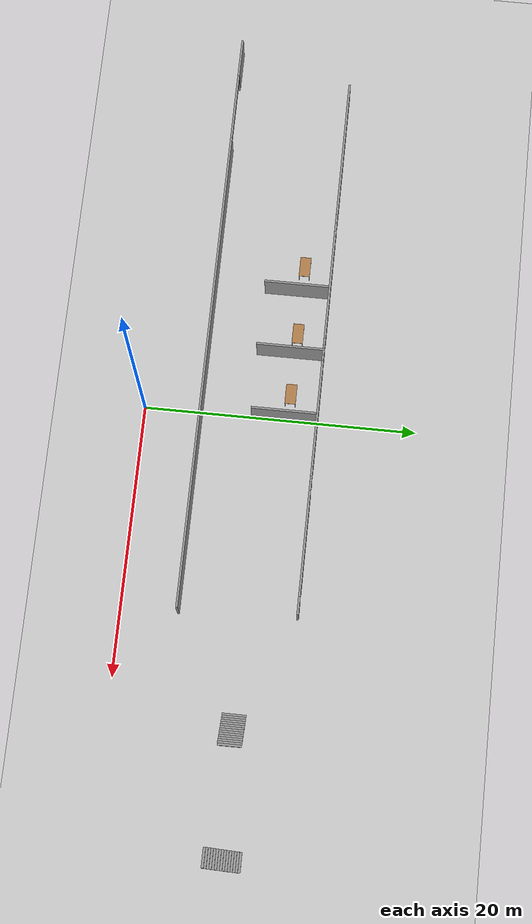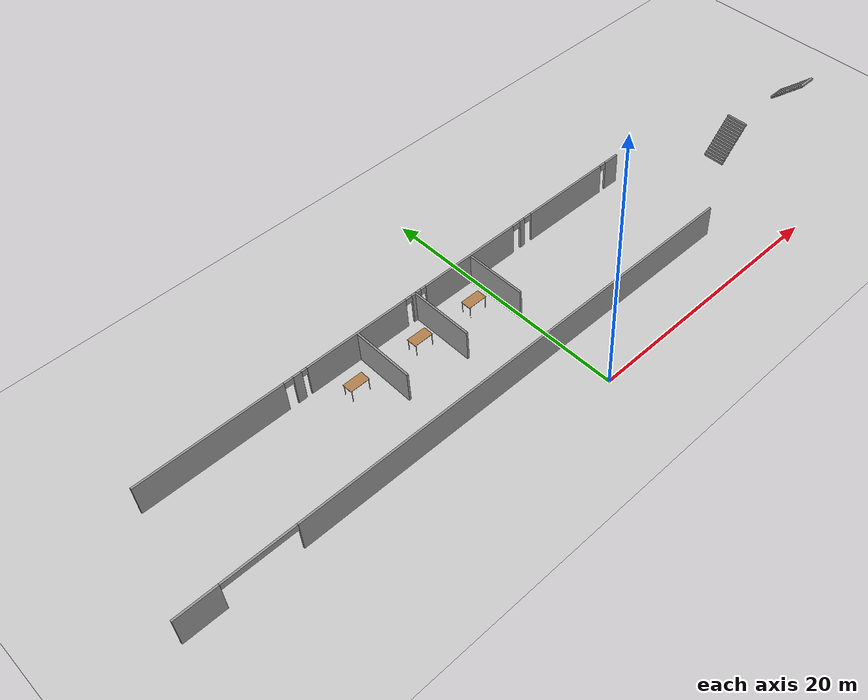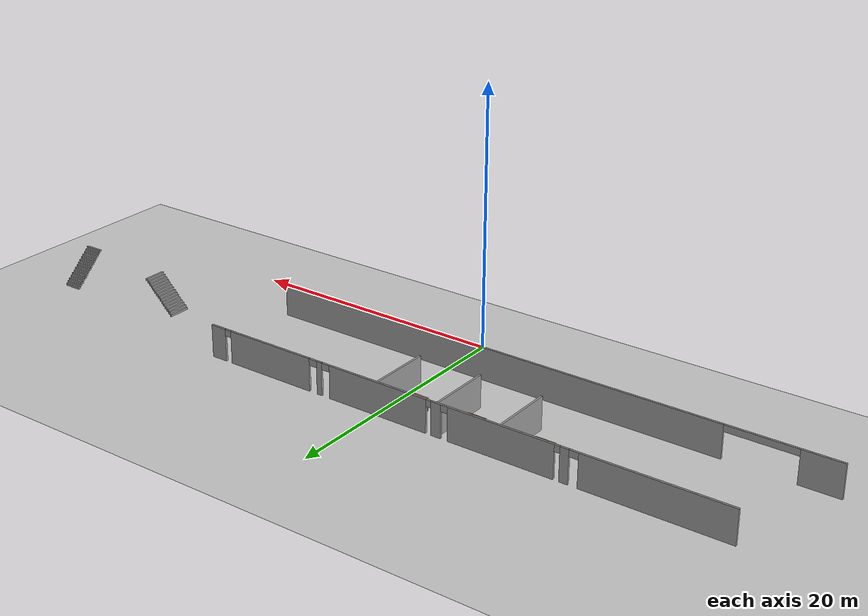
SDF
<sdf version="1.6">
 <world name="default">
  <model name="ground_plane">
   <static>1</static>
   <link name="link">
    <collision name="collision">
     <geometry><plane><normal>0 0 1</normal><size>100 100</size></plane></geometry>
     <surface><friction><ode><mu>100</mu><mu2>50</mu2></ode></friction></surface>
    </collision>
    <visual name="visual">
     <cast_shadows>0</cast_shadows>
     <geometry><plane><normal>0 0 1</normal><size>100 100</size></plane></geometry>
     <material>
      <script><uri>file://media/materials/scripts/gazebo.material</uri><name>Gazebo/Grey</name></script>
     </material>
    </visual>
   </link>
  </model>
  <model name="se1f1_fin.sdf">
   <pose>1.7543 -3.15003 0 0 -0 0</pose>
   <link name="Stairs_0">
    <visual name="Stairs_0_Visual_0">
     <pose>20.0688 12.0461 0.083333 0 -0 1.5708</pose>
     <geometry><box><size>1.71709 0.168037 0.166667</size></box></geometry>
     <material>
      <script><uri>file://media/materials/scripts/gazebo.material</uri><name>Gazebo/Grey</name></script>
      <ambient>1 1 1 1</ambient>
     </material>
     <meta><layer>0</layer></meta>
    </visual>
    <collision name="Stairs_0_Collision_0">
     <geometry><box><size>1.71709 0.168037 0.166667</size></box></geometry>
     <pose>20.0688 12.0461 0.083333 0 -0 1.5708</pose>
    </collision>
    <visual name="Stairs_0_Visual_1">
     <pose>20.2369 12.0461 0.25 0 -0 1.5708</pose>
     <geometry><box><size>1.71709 0.168037 0.166667</size></box></geometry>
     <material>
      <script><uri>file://media/materials/scripts/gazebo.material</uri><name>Gazebo/Grey</name></script>
      <ambient>1 1 1 1</ambient>
     </material>
     <meta><layer>0</layer></meta>
    </visual>
    <collision name="Stairs_0_Collision_1">
     <geometry><box><size>1.71709 0.168037 0.166667</size></box></geometry>
     <pose>20.2369 12.0461 0.25 0 -0 1.5708</pose>
    </collision>
    <visual name="Stairs_0_Visual_2">
     <pose>20.4049 12.0461 0.416667 0 -0 1.5708</pose>
     <geometry><box><size>1.71709 0.168037 0.166667</size></box></geometry>
     <material>
      <script><uri>file://media/materials/scripts/gazebo.material</uri><name>Gazebo/Grey</name></script>
      <ambient>1 1 1 1</ambient>
     </material>
     <meta><layer>0</layer></meta>
    </visual>
    <collision name="Stairs_0_Collision_2">
     <geometry><box><size>1.71709 0.168037 0.166667</size></box></geometry>
     <pose>20.4049 12.0461 0.416667 0 -0 1.5708</pose>
    </collision>
    <visual name="Stairs_0_Visual_3">
     <pose>20.5729 12.0461 0.583333 0 -0 1.5708</pose>
     <geometry><box><size>1.71709 0.168037 0.166667</size></box></geometry>
     <material>
      <script><uri>file://media/materials/scripts/gazebo.material</uri><name>Gazebo/Grey</name></script>
      <ambient>1 1 1 1</ambient>
     </material>
     <meta><layer>0</layer></meta>
    </visual>
    <collision name="Stairs_0_Collision_3">
     <geometry><box><size>1.71709 0.168037 0.166667</size></box></geometry>
     <pose>20.5729 12.0461 0.583333 0 -0 1.5708</pose>
    </collision>
    <visual name="Stairs_0_Visual_4">
     <pose>20.741 12.0461 0.75 0 -0 1.5708</pose>
     <geometry><box><size>1.71709 0.168037 0.166667</size></box></geometry>
     <material>
      <script><uri>file://media/materials/scripts/gazebo.material</uri><name>Gazebo/Grey</name></script>
      <ambient>1 1 1 1</ambient>
     </material>
     <meta><layer>0</layer></meta>
    </visual>
    <collision name="Stairs_0_Collision_4">
     <geometry><box><size>1.71709 0.168037 0.166667</size></box></geometry>
     <pose>20.741 12.0461 0.75 0 -0 1.5708</pose>
    </collision>
    <visual name="Stairs_0_Visual_5">
     <pose>20.909 12.0461 0.916667 0 -0 1.5708</pose>
     <geometry><box><size>1.71709 0.168037 0.166667</size></box></geometry>
     <material>
      <script><uri>file://media/materials/scripts/gazebo.material</uri><name>Gazebo/Grey</name></script>
      <ambient>1 1 1 1</ambient>
     </material>
     <meta><layer>0</layer></meta>
    </visual>
    <collision name="Stairs_0_Collision_5">
     <geometry><box><size>1.71709 0.168037 0.166667</size></box></geometry>
     <pose>20.909 12.0461 0.916667 0 -0 1.5708</pose>
    </collision>
    <visual name="Stairs_0_Visual_6">
     <pose>21.077 12.0461 1.08333 0 -0 1.5708</pose>
     <geometry><box><size>1.71709 0.168037 0.166667</size></box></geometry>
     <material>
      <script><uri>file://media/materials/scripts/gazebo.material</uri><name>Gazebo/Grey</name></script>
      <ambient>1 1 1 1</ambient>
     </material>
     <meta><layer>0</layer></meta>
    </visual>
    <collision name="Stairs_0_Collision_6">
     <geometry><box><size>1.71709 0.168037 0.166667</size></box></geometry>
     <pose>21.077 12.0461 1.08333 0 -0 1.5708</pose>
    </collision>
    <visual name="Stairs_0_Visual_7">
     <pose>21.2451 12.0461 1.25 0 -0 1.5708</pose>
     <geometry><box><size>1.71709 0.168037 0.166667</size></box></geometry>
     <material>
      <script><uri>file://media/materials/scripts/gazebo.material</uri><name>Gazebo/Grey</name></script>
      <ambient>1 1 1 1</ambient>
     </material>
     <meta><layer>0</layer></meta>
    </visual>
    <collision name="Stairs_0_Collision_7">
     <geometry><box><size>1.71709 0.168037 0.166667</size></box></geometry>
     <pose>21.2451 12.0461 1.25 0 -0 1.5708</pose>
    </collision>
    <visual name="Stairs_0_Visual_8">
     <pose>21.4131 12.0461 1.41667 0 -0 1.5708</pose>
     <geometry><box><size>1.71709 0.168037 0.166667</size></box></geometry>
     <material>
      <script><uri>file://media/materials/scripts/gazebo.material</uri><name>Gazebo/Grey</name></script>
      <ambient>1 1 1 1</ambient>
     </material>
     <meta><layer>0</layer></meta>
    </visual>
    <collision name="Stairs_0_Collision_8">
     <geometry><box><size>1.71709 0.168037 0.166667</size></box></geometry>
     <pose>21.4131 12.0461 1.41667 0 -0 1.5708</pose>
    </collision>
    <visual name="Stairs_0_Visual_9">
     <pose>21.5812 12.0461 1.58333 0 -0 1.5708</pose>
     <geometry><box><size>1.71709 0.168037 0.166667</size></box></geometry>
     <material>
      <script><uri>file://media/materials/scripts/gazebo.material</uri><name>Gazebo/Grey</name></script>
      <ambient>1 1 1 1</ambient>
     </material>
     <meta><layer>0</layer></meta>
    </visual>
    <collision name="Stairs_0_Collision_9">
     <geometry><box><size>1.71709 0.168037 0.166667</size></box></geometry>
     <pose>21.5812 12.0461 1.58333 0 -0 1.5708</pose>
    </collision>
    <visual name="Stairs_0_Visual_10">
     <pose>21.7492 12.0461 1.75 0 -0 1.5708</pose>
     <geometry><box><size>1.71709 0.168037 0.166667</size></box></geometry>
     <material>
      <script><uri>file://media/materials/scripts/gazebo.material</uri><name>Gazebo/Grey</name></script>
      <ambient>1 1 1 1</ambient>
     </material>
     <meta><layer>0</layer></meta>
    </visual>
    <collision name="Stairs_0_Collision_10">
     <geometry><box><size>1.71709 0.168037 0.166667</size></box></geometry>
     <pose>21.7492 12.0461 1.75 0 -0 1.5708</pose>
    </collision>
    <visual name="Stairs_0_Visual_11">
     <pose>21.9172 12.0461 1.91667 0 -0 1.5708</pose>
     <geometry><box><size>1.71709 0.168037 0.166667</size></box></geometry>
     <material>
      <script><uri>file://media/materials/scripts/gazebo.material</uri><name>Gazebo/Grey</name></script>
      <ambient>1 1 1 1</ambient>
     </material>
     <meta><layer>0</layer></meta>
    </visual>
    <collision name="Stairs_0_Collision_11">
     <geometry><box><size>1.71709 0.168037 0.166667</size></box></geometry>
     <pose>21.9172 12.0461 1.91667 0 -0 1.5708</pose>
    </collision>
    <visual name="Stairs_0_Visual_12">
     <pose>22.0853 12.0461 2.08333 0 -0 1.5708</pose>
     <geometry><box><size>1.71709 0.168037 0.166667</size></box></geometry>
     <material>
      <script><uri>file://media/materials/scripts/gazebo.material</uri><name>Gazebo/Grey</name></script>
      <ambient>1 1 1 1</ambient>
     </material>
     <meta><layer>0</layer></meta>
    </visual>
    <collision name="Stairs_0_Collision_12">
     <geometry><box><size>1.71709 0.168037 0.166667</size></box></geometry>
     <pose>22.0853 12.0461 2.08333 0 -0 1.5708</pose>
    </collision>
    <visual name="Stairs_0_Visual_13">
     <pose>22.2533 12.0461 2.25 0 -0 1.5708</pose>
     <geometry><box><size>1.71709 0.168037 0.166667</size></box></geometry>
     <material>
      <script><uri>file://media/materials/scripts/gazebo.material</uri><name>Gazebo/Grey</name></script>
      <ambient>1 1 1 1</ambient>
     </material>
     <meta><layer>0</layer></meta>
    </visual>
    <collision name="Stairs_0_Collision_13">
     <geometry><box><size>1.71709 0.168037 0.166667</size></box></geometry>
     <pose>22.2533 12.0461 2.25 0 -0 1.5708</pose>
    </collision>
    <visual name="Stairs_0_Visual_14">
     <pose>22.4213 12.0461 2.41667 0 -0 1.5708</pose>
     <geometry><box><size>1.71709 0.168037 0.166667</size></box></geometry>
     <material>
      <script><uri>file://media/materials/scripts/gazebo.material</uri><name>Gazebo/Grey</name></script>
      <ambient>1 1 1 1</ambient>
     </material>
     <meta><layer>0</layer></meta>
    </visual>
    <collision name="Stairs_0_Collision_14">
     <geometry><box><size>1.71709 0.168037 0.166667</size></box></geometry>
     <pose>22.4213 12.0461 2.41667 0 -0 1.5708</pose>
    </collision>
   </link>
   <link name="Stairs_1">
    <visual name="Stairs_1_Visual_0">
     <pose>30.095 13.5256 0.083333 0 -0 0</pose>
     <geometry><box><size>1.41976 0.173867 0.166667</size></box></geometry>
     <material>
      <script><uri>file://media/materials/scripts/gazebo.material</uri><name>Gazebo/Grey</name></script>
      <ambient>1 1 1 1</ambient>
     </material>
     <meta><layer>0</layer></meta>
    </visual>
    <collision name="Stairs_1_Collision_0">
     <geometry><box><size>1.41976 0.173867 0.166667</size></box></geometry>
     <pose>30.095 13.5256 0.083333 0 -0 0</pose>
    </collision>
    <visual name="Stairs_1_Visual_1">
     <pose>30.095 13.3517 0.25 0 -0 0</pose>
     <geometry><box><size>1.41976 0.173867 0.166667</size></box></geometry>
     <material>
      <script><uri>file://media/materials/scripts/gazebo.material</uri><name>Gazebo/Grey</name></script>
      <ambient>1 1 1 1</ambient>
     </material>
     <meta><layer>0</layer></meta>
    </visual>
    <collision name="Stairs_1_Collision_1">
     <geometry><box><size>1.41976 0.173867 0.166667</size></box></geometry>
     <pose>30.095 13.3517 0.25 0 -0 0</pose>
    </collision>
    <visual name="Stairs_1_Visual_2">
     <pose>30.095 13.1778 0.416667 0 -0 0</pose>
     <geometry><box><size>1.41976 0.173867 0.166667</size></box></geometry>
     <material>
      <script><uri>file://media/materials/scripts/gazebo.material</uri><name>Gazebo/Grey</name></script>
      <ambient>1 1 1 1</ambient>
     </material>
     <meta><layer>0</layer></meta>
    </visual>
    <collision name="Stairs_1_Collision_2">
     <geometry><box><size>1.41976 0.173867 0.166667</size></box></geometry>
     <pose>30.095 13.1778 0.416667 0 -0 0</pose>
    </collision>
    <visual name="Stairs_1_Visual_3">
     <pose>30.095 13.004 0.583333 0 -0 0</pose>
     <geometry><box><size>1.41976 0.173867 0.166667</size></box></geometry>
     <material>
      <script><uri>file://media/materials/scripts/gazebo.material</uri><name>Gazebo/Grey</name></script>
      <ambient>1 1 1 1</ambient>
     </material>
     <meta><layer>0</layer></meta>
    </visual>
    <collision name="Stairs_1_Collision_3">
     <geometry><box><size>1.41976 0.173867 0.166667</size></box></geometry>
     <pose>30.095 13.004 0.583333 0 -0 0</pose>
    </collision>
    <visual name="Stairs_1_Visual_4">
     <pose>30.095 12.8301 0.75 0 -0 0</pose>
     <geometry><box><size>1.41976 0.173867 0.166667</size></box></geometry>
     <material>
      <script><uri>file://media/materials/scripts/gazebo.material</uri><name>Gazebo/Grey</name></script>
      <ambient>1 1 1 1</ambient>
     </material>
     <meta><layer>0</layer></meta>
    </visual>
    <collision name="Stairs_1_Collision_4">
     <geometry><box><size>1.41976 0.173867 0.166667</size></box></geometry>
     <pose>30.095 12.8301 0.75 0 -0 0</pose>
    </collision>
    <visual name="Stairs_1_Visual_5">
     <pose>30.095 12.6562 0.916667 0 -0 0</pose>
     <geometry><box><size>1.41976 0.173867 0.166667</size></box></geometry>
     <material>
      <script><uri>file://media/materials/scripts/gazebo.material</uri><name>Gazebo/Grey</name></script>
      <ambient>1 1 1 1</ambient>
     </material>
     <meta><layer>0</layer></meta>
    </visual>
    <collision name="Stairs_1_Collision_5">
     <geometry><box><size>1.41976 0.173867 0.166667</size></box></geometry>
     <pose>30.095 12.6562 0.916667 0 -0 0</pose>
    </collision>
    <visual name="Stairs_1_Visual_6">
     <pose>30.095 12.4824 1.08333 0 -0 0</pose>
     <geometry><box><size>1.41976 0.173867 0.166667</size></box></geometry>
     <material>
      <script><uri>file://media/materials/scripts/gazebo.material</uri><name>Gazebo/Grey</name></script>
      <ambient>1 1 1 1</ambient>
     </material>
     <meta><layer>0</layer></meta>
    </visual>
    <collision name="Stairs_1_Collision_6">
     <geometry><box><size>1.41976 0.173867 0.166667</size></box></geometry>
     <pose>30.095 12.4824 1.08333 0 -0 0</pose>
    </collision>
    <visual name="Stairs_1_Visual_7">
     <pose>30.095 12.3085 1.25 0 -0 0</pose>
     <geometry><box><size>1.41976 0.173867 0.166667</size></box></geometry>
     <material>
      <script><uri>file://media/materials/scripts/gazebo.material</uri><name>Gazebo/Grey</name></script>
      <ambient>1 1 1 1</ambient>
     </material>
     <meta><layer>0</layer></meta>
    </visual>
    <collision name="Stairs_1_Collision_7">
     <geometry><box><size>1.41976 0.173867 0.166667</size></box></geometry>
     <pose>30.095 12.3085 1.25 0 -0 0</pose>
    </collision>
    <visual name="Stairs_1_Visual_8">
     <pose>30.095 12.1346 1.41667 0 -0 0</pose>
     <geometry><box><size>1.41976 0.173867 0.166667</size></box></geometry>
     <material>
      <script><uri>file://media/materials/scripts/gazebo.material</uri><name>Gazebo/Grey</name></script>
      <ambient>1 1 1 1</ambient>
     </material>
     <meta><layer>0</layer></meta>
    </visual>
    <collision name="Stairs_1_Collision_8">
     <geometry><box><size>1.41976 0.173867 0.166667</size></box></geometry>
     <pose>30.095 12.1346 1.41667 0 -0 0</pose>
    </collision>
    <visual name="Stairs_1_Visual_9">
     <pose>30.095 11.9608 1.58333 0 -0 0</pose>
     <geometry><box><size>1.41976 0.173867 0.166667</size></box></geometry>
     <material>
      <script><uri>file://media/materials/scripts/gazebo.material</uri><name>Gazebo/Grey</name></script>
      <ambient>1 1 1 1</ambient>
     </material>
     <meta><layer>0</layer></meta>
    </visual>
    <collision name="Stairs_1_Collision_9">
     <geometry><box><size>1.41976 0.173867 0.166667</size></box></geometry>
     <pose>30.095 11.9608 1.58333 0 -0 0</pose>
    </collision>
    <visual name="Stairs_1_Visual_10">
     <pose>30.095 11.7869 1.75 0 -0 0</pose>
     <geometry><box><size>1.41976 0.173867 0.166667</size></box></geometry>
     <material>
      <script><uri>file://media/materials/scripts/gazebo.material</uri><name>Gazebo/Grey</name></script>
      <ambient>1 1 1 1</ambient>
     </material>
     <meta><layer>0</layer></meta>
    </visual>
    <collision name="Stairs_1_Collision_10">
     <geometry><box><size>1.41976 0.173867 0.166667</size></box></geometry>
     <pose>30.095 11.7869 1.75 0 -0 0</pose>
    </collision>
    <visual name="Stairs_1_Visual_11">
     <pose>30.095 11.613 1.91667 0 -0 0</pose>
     <geometry><box><size>1.41976 0.173867 0.166667</size></box></geometry>
     <material>
      <script><uri>file://media/materials/scripts/gazebo.material</uri><name>Gazebo/Grey</name></script>
      <ambient>1 1 1 1</ambient>
     </material>
     <meta><layer>0</layer></meta>
    </visual>
    <collision name="Stairs_1_Collision_11">
     <geometry><box><size>1.41976 0.173867 0.166667</size></box></geometry>
     <pose>30.095 11.613 1.91667 0 -0 0</pose>
    </collision>
    <visual name="Stairs_1_Visual_12">
     <pose>30.095 11.4391 2.08333 0 -0 0</pose>
     <geometry><box><size>1.41976 0.173867 0.166667</size></box></geometry>
     <material>
      <script><uri>file://media/materials/scripts/gazebo.material</uri><name>Gazebo/Grey</name></script>
      <ambient>1 1 1 1</ambient>
     </material>
     <meta><layer>0</layer></meta>
    </visual>
    <collision name="Stairs_1_Collision_12">
     <geometry><box><size>1.41976 0.173867 0.166667</size></box></geometry>
     <pose>30.095 11.4391 2.08333 0 -0 0</pose>
    </collision>
    <visual name="Stairs_1_Visual_13">
     <pose>30.095 11.2653 2.25 0 -0 0</pose>
     <geometry><box><size>1.41976 0.173867 0.166667</size></box></geometry>
     <material>
      <script><uri>file://media/materials/scripts/gazebo.material</uri><name>Gazebo/Grey</name></script>
      <ambient>1 1 1 1</ambient>
     </material>
     <meta><layer>0</layer></meta>
    </visual>
    <collision name="Stairs_1_Collision_13">
     <geometry><box><size>1.41976 0.173867 0.166667</size></box></geometry>
     <pose>30.095 11.2653 2.25 0 -0 0</pose>
    </collision>
    <visual name="Stairs_1_Visual_14">
     <pose>30.095 11.0914 2.41667 0 -0 0</pose>
     <geometry><box><size>1.41976 0.173867 0.166667</size></box></geometry>
     <material>
      <script><uri>file://media/materials/scripts/gazebo.material</uri><name>Gazebo/Grey</name></script>
      <ambient>1 1 1 1</ambient>
     </material>
     <meta><layer>0</layer></meta>
    </visual>
    <collision name="Stairs_1_Collision_14">
     <geometry><box><size>1.41976 0.173867 0.166667</size></box></geometry>
     <pose>30.095 11.0914 2.41667 0 -0 0</pose>
    </collision>
   </link>
   <link name="Wall_101">
    <collision name="Wall_101_Collision">
     <geometry><box><size>4.75 0.15 2.5</size></box></geometry>
     <pose>0 0 1.25 0 -0 0</pose>
    </collision>
    <visual name="Wall_101_Visual">
     <pose>0 0 1.25 0 -0 0</pose>
     <geometry><box><size>4.75 0.15 2.5</size></box></geometry>
     <material>
      <script><uri>file://media/materials/scripts/gazebo.material</uri><name>Gazebo/Grey</name></script>
      <ambient>1 1 1 1</ambient>
     </material>
     <meta><layer>0</layer></meta>
    </visual>
    <pose>-11.6538 13.3735 0 0 -0 1.5708</pose>
   </link>
   <link name="Wall_103">
    <collision name="Wall_103_Collision">
     <geometry><box><size>5 0.15 2.5</size></box></geometry>
     <pose>0 0 1.25 0 -0 0</pose>
    </collision>
    <visual name="Wall_103_Visual">
     <pose>0 0 1.25 0 -0 0</pose>
     <geometry><box><size>5 0.15 2.5</size></box></geometry>
     <material>
      <script><uri>file://media/materials/scripts/gazebo.material</uri><name>Gazebo/Grey</name></script>
      <ambient>1 1 1 1</ambient>
     </material>
     <meta><layer>0</layer></meta>
    </visual>
    <pose>-6.75659 13.3935 0 0 -0 1.5708</pose>
   </link>
   <link name="Wall_106">
    <collision name="Wall_106_Collision">
     <geometry><box><size>4.75 0.15 2.5</size></box></geometry>
     <pose>0 0 1.25 0 -0 0</pose>
    </collision>
    <visual name="Wall_106_Visual">
     <pose>0 0 1.25 0 -0 0</pose>
     <geometry><box><size>4.75 0.15 2.5</size></box></geometry>
     <material>
      <script><uri>file://media/materials/scripts/gazebo.material</uri><name>Gazebo/Grey</name></script>
      <ambient>1 1 1 1</ambient>
     </material>
     <meta><layer>0</layer></meta>
    </visual>
    <pose>-1.85938 13.3735 0 0 -0 1.5708</pose>
   </link>
   <link name="Wall_21">
    <pose>-7.59191 15.8321 0 0 -0 0</pose>
    <visual name="Wall_21_Visual_0">
     <pose>-15.16 0 1.25 0 -0 0</pose>
     <geometry><box><size>10.68 0.15 2.5</size></box></geometry>
     <material>
      <script><uri>file://media/materials/scripts/gazebo.material</uri><name>Gazebo/Grey</name></script>
      <ambient>1 1 1 1</ambient>
     </material>
     <meta><layer>0</layer></meta>
    </visual>
    <collision name="Wall_21_Collision_0">
     <geometry><box><size>10.68 0.15 2.5</size></box></geometry>
     <pose>-15.16 0 1.25 0 -0 0</pose>
    </collision>
    <visual name="Wall_21_Visual_1">
     <pose>-8.81042 0 1.25 0 -0 0</pose>
     <geometry><box><size>0.642534 0.15 2.5</size></box></geometry>
     <material>
      <script><uri>file://media/materials/scripts/gazebo.material</uri><name>Gazebo/Grey</name></script>
      <ambient>1 1 1 1</ambient>
     </material>
     <meta><layer>0</layer></meta>
    </visual>
    <collision name="Wall_21_Collision_1">
     <geometry><box><size>0.642534 0.15 2.5</size></box></geometry>
     <pose>-8.81042 0 1.25 0 -0 0</pose>
    </collision>
    <visual name="Wall_21_Visual_2">
     <pose>-4.06184 0 1.25 0 -0 0</pose>
     <geometry><box><size>8.03762 0.15 2.5</size></box></geometry>
     <material>
      <script><uri>file://media/materials/scripts/gazebo.material</uri><name>Gazebo/Grey</name></script>
      <ambient>1 1 1 1</ambient>
     </material>
     <meta><layer>0</layer></meta>
    </visual>
    <collision name="Wall_21_Collision_2">
     <geometry><box><size>8.03762 0.15 2.5</size></box></geometry>
     <pose>-4.06184 0 1.25 0 -0 0</pose>
    </collision>
    <visual name="Wall_21_Visual_3">
     <pose>0.87956 0 1.25 0 -0 0</pose>
     <geometry><box><size>0.771078 0.15 2.5</size></box></geometry>
     <material>
      <script><uri>file://media/materials/scripts/gazebo.material</uri><name>Gazebo/Grey</name></script>
      <ambient>1 1 1 1</ambient>
     </material>
     <meta><layer>0</layer></meta>
    </visual>
    <collision name="Wall_21_Collision_3">
     <geometry><box><size>0.771078 0.15 2.5</size></box></geometry>
     <pose>0.87956 0 1.25 0 -0 0</pose>
    </collision>
    <visual name="Wall_21_Visual_4">
     <pose>5.71888 0 1.25 0 -0 0</pose>
     <geometry><box><size>8.0603 0.15 2.5</size></box></geometry>
     <material>
      <script><uri>file://media/materials/scripts/gazebo.material</uri><name>Gazebo/Grey</name></script>
      <ambient>1 1 1 1</ambient>
     </material>
     <meta><layer>0</layer></meta>
    </visual>
    <collision name="Wall_21_Collision_4">
     <geometry><box><size>8.0603 0.15 2.5</size></box></geometry>
     <pose>5.71888 0 1.25 0 -0 0</pose>
    </collision>
    <visual name="Wall_21_Visual_5">
     <pose>10.6433 0 1.25 0 -0 0</pose>
     <geometry><box><size>0.427032 0.15 2.5</size></box></geometry>
     <material>
      <script><uri>file://media/materials/scripts/gazebo.material</uri><name>Gazebo/Grey</name></script>
      <ambient>1 1 1 1</ambient>
     </material>
     <meta><layer>0</layer></meta>
    </visual>
    <collision name="Wall_21_Collision_5">
     <geometry><box><size>0.427032 0.15 2.5</size></box></geometry>
     <pose>10.6433 0 1.25 0 -0 0</pose>
    </collision>
    <visual name="Wall_21_Visual_6">
     <pose>15.1074 0 1.25 0 -0 0</pose>
     <geometry><box><size>7.18509 0.15 2.5</size></box></geometry>
     <material>
      <script><uri>file://media/materials/scripts/gazebo.material</uri><name>Gazebo/Grey</name></script>
      <ambient>1 1 1 1</ambient>
     </material>
     <meta><layer>0</layer></meta>
    </visual>
    <collision name="Wall_21_Collision_6">
     <geometry><box><size>7.18509 0.15 2.5</size></box></geometry>
     <pose>15.1074 0 1.25 0 -0 0</pose>
    </collision>
    <visual name="Wall_21_Visual_7">
     <pose>19.8602 0 1.25 0 -0 0</pose>
     <geometry><box><size>1.27959 0.15 2.5</size></box></geometry>
     <material>
      <script><uri>file://media/materials/scripts/gazebo.material</uri><name>Gazebo/Grey</name></script>
      <ambient>1 1 1 1</ambient>
     </material>
     <meta><layer>0</layer></meta>
    </visual>
    <collision name="Wall_21_Collision_7">
     <geometry><box><size>1.27959 0.15 2.5</size></box></geometry>
     <pose>19.8602 0 1.25 0 -0 0</pose>
    </collision>
    <visual name="Wall_21_Visual_8">
     <pose>-9.47583 0 2.25 0 -0 0</pose>
     <geometry><box><size>0.68828 0.15 0.5</size></box></geometry>
     <material>
      <script><uri>file://media/materials/scripts/gazebo.material</uri><name>Gazebo/Grey</name></script>
      <ambient>1 1 1 1</ambient>
     </material>
     <meta><layer>0</layer></meta>
    </visual>
    <collision name="Wall_21_Collision_8">
     <geometry><box><size>0.68828 0.15 0.5</size></box></geometry>
     <pose>-9.47583 0 2.25 0 -0 0</pose>
    </collision>
    <visual name="Wall_21_Visual_9">
     <pose>-8.2849 0 2.25 0 -0 0</pose>
     <geometry><box><size>0.408507 0.15 0.5</size></box></geometry>
     <material>
      <script><uri>file://media/materials/scripts/gazebo.material</uri><name>Gazebo/Grey</name></script>
      <ambient>1 1 1 1</ambient>
     </material>
     <meta><layer>0</layer></meta>
    </visual>
    <collision name="Wall_21_Collision_9">
     <geometry><box><size>0.408507 0.15 0.5</size></box></geometry>
     <pose>-8.2849 0 2.25 0 -0 0</pose>
    </collision>
    <visual name="Wall_21_Visual_10">
     <pose>0.225495 0 2.25 0 -0 0</pose>
     <geometry><box><size>0.537051 0.15 0.5</size></box></geometry>
     <material>
      <script><uri>file://media/materials/scripts/gazebo.material</uri><name>Gazebo/Grey</name></script>
      <ambient>1 1 1 1</ambient>
     </material>
     <meta><layer>0</layer></meta>
    </visual>
    <collision name="Wall_21_Collision_10">
     <geometry><box><size>0.537051 0.15 0.5</size></box></geometry>
     <pose>0.225495 0 2.25 0 -0 0</pose>
    </collision>
    <visual name="Wall_21_Visual_11">
     <pose>1.47691 0 2.25 0 -0 0</pose>
     <geometry><box><size>0.423629 0.15 0.5</size></box></geometry>
     <material>
      <script><uri>file://media/materials/scripts/gazebo.material</uri><name>Gazebo/Grey</name></script>
      <ambient>1 1 1 1</ambient>
     </material>
     <meta><layer>0</layer></meta>
    </visual>
    <collision name="Wall_21_Collision_11">
     <geometry><box><size>0.423629 0.15 0.5</size></box></geometry>
     <pose>1.47691 0 2.25 0 -0 0</pose>
    </collision>
    <visual name="Wall_21_Visual_12">
     <pose>10.0894 0 2.25 0 -0 0</pose>
     <geometry><box><size>0.680718 0.15 0.5</size></box></geometry>
     <material>
      <script><uri>file://media/materials/scripts/gazebo.material</uri><name>Gazebo/Grey</name></script>
      <ambient>1 1 1 1</ambient>
     </material>
     <meta><layer>0</layer></meta>
    </visual>
    <collision name="Wall_21_Collision_12">
     <geometry><box><size>0.680718 0.15 0.5</size></box></geometry>
     <pose>10.0894 0 2.25 0 -0 0</pose>
    </collision>
    <visual name="Wall_21_Visual_13">
     <pose>11.1858 0 2.25 0 -0 0</pose>
     <geometry><box><size>0.658034 0.15 0.5</size></box></geometry>
     <material>
      <script><uri>file://media/materials/scripts/gazebo.material</uri><name>Gazebo/Grey</name></script>
      <ambient>1 1 1 1</ambient>
     </material>
     <meta><layer>0</layer></meta>
    </visual>
    <collision name="Wall_21_Collision_13">
     <geometry><box><size>0.658034 0.15 0.5</size></box></geometry>
     <pose>11.1858 0 2.25 0 -0 0</pose>
    </collision>
    <visual name="Wall_21_Visual_14">
     <pose>18.9602 0 2.25 0 -0 0</pose>
     <geometry><box><size>0.5205 0.15 0.5</size></box></geometry>
     <material>
      <script><uri>file://media/materials/scripts/gazebo.material</uri><name>Gazebo/Grey</name></script>
      <ambient>1 1 1 1</ambient>
     </material>
     <meta><layer>0</layer></meta>
    </visual>
    <collision name="Wall_21_Collision_14">
     <geometry><box><size>0.5205 0.15 0.5</size></box></geometry>
     <pose>18.9602 0 2.25 0 -0 0</pose>
    </collision>
   </link>
   <link name="Wall_8">
    <pose>-8.875 7.31753 0 0 -0 0</pose>
    <visual name="Wall_8_Visual_0">
     <pose>-20.6414 0 1.25 0 -0 0</pose>
     <geometry><box><size>2.96714 0.15 2.5</size></box></geometry>
     <material>
      <script><uri>file://media/materials/scripts/gazebo.material</uri><name>Gazebo/Grey</name></script>
      <ambient>1 1 1 1</ambient>
     </material>
     <meta><layer>0</layer></meta>
    </visual>
    <collision name="Wall_8_Collision_0">
     <geometry><box><size>2.96714 0.15 2.5</size></box></geometry>
     <pose>-20.6414 0 1.25 0 -0 0</pose>
    </collision>
    <visual name="Wall_8_Visual_1">
     <pose>4.07367 0 1.25 0 -0 0</pose>
     <geometry><box><size>36.1027 0.15 2.5</size></box></geometry>
     <material>
      <script><uri>file://media/materials/scripts/gazebo.material</uri><name>Gazebo/Grey</name></script>
      <ambient>1 1 1 1</ambient>
     </material>
     <meta><layer>0</layer></meta>
    </visual>
    <collision name="Wall_8_Collision_1">
     <geometry><box><size>36.1027 0.15 2.5</size></box></geometry>
     <pose>4.07367 0 1.25 0 -0 0</pose>
    </collision>
    <visual name="Wall_8_Visual_2">
     <pose>-16.5678 0 2.25 0 -0 0</pose>
     <geometry><box><size>5.1802 0.15 0.5</size></box></geometry>
     <material>
      <script><uri>file://media/materials/scripts/gazebo.material</uri><name>Gazebo/Grey</name></script>
      <ambient>1 1 1 1</ambient>
     </material>
     <meta><layer>0</layer></meta>
    </visual>
    <collision name="Wall_8_Collision_2">
     <geometry><box><size>5.1802 0.15 0.5</size></box></geometry>
     <pose>-16.5678 0 2.25 0 -0 0</pose>
    </collision>
   </link>
   <static>1</static>
  </model>
  <model name="table_1">
   <static>1</static>
   <link name="link">
    <collision name="surface">
     <pose>0 0 1 0 -0 0</pose>
     <geometry><box><size>1.5 0.8 0.03</size></box></geometry>
     <surface><friction><ode><mu>0.6</mu><mu2>0.6</mu2></ode></friction></surface>
    </collision>
    <visual name="visual1">
     <pose>0 0 1 0 -0 0</pose>
     <geometry><box><size>1.5 0.8 0.03</size></box></geometry>
     <material>
      <script><uri>file://media/materials/scripts/gazebo.material</uri><name>Gazebo/Wood</name></script>
     </material>
    </visual>
    <collision name="front_left_leg">
     <pose>0.68 0.38 0.5 0 -0 0</pose>
     <geometry><cylinder><radius>0.02</radius><length>1</length></cylinder></geometry>
    </collision>
    <visual name="front_left_leg">
     <pose>0.68 0.38 0.5 0 -0 0</pose>
     <geometry><cylinder><radius>0.02</radius><length>1</length></cylinder></geometry>
     <material>
      <script><uri>file://media/materials/scripts/gazebo.material</uri><name>Gazebo/Grey</name></script>
     </material>
    </visual>
    <collision name="front_right_leg">
     <pose>0.68 -0.38 0.5 0 -0 0</pose>
     <geometry><cylinder><radius>0.02</radius><length>1</length></cylinder></geometry>
    </collision>
    <visual name="front_right_leg">
     <pose>0.68 -0.38 0.5 0 -0 0</pose>
     <geometry><cylinder><radius>0.02</radius><length>1</length></cylinder></geometry>
     <material>
      <script><uri>file://media/materials/scripts/gazebo.material</uri><name>Gazebo/Grey</name></script>
     </material>
    </visual>
    <collision name="back_right_leg">
     <pose>-0.68 -0.38 0.5 0 -0 0</pose>
     <geometry><cylinder><radius>0.02</radius><length>1</length></cylinder></geometry>
    </collision>
    <visual name="back_right_leg">
     <pose>-0.68 -0.38 0.5 0 -0 0</pose>
     <geometry><cylinder><radius>0.02</radius><length>1</length></cylinder></geometry>
     <material>
      <script><uri>file://media/materials/scripts/gazebo.material</uri><name>Gazebo/Grey</name></script>
     </material>
    </visual>
    <collision name="back_left_leg">
     <pose>-0.68 0.38 0.5 0 -0 0</pose>
     <geometry><cylinder><radius>0.02</radius><length>1</length></cylinder></geometry>
    </collision>
    <visual name="back_left_leg">
     <pose>-0.68 0.38 0.5 0 -0 0</pose>
     <geometry><cylinder><radius>0.02</radius><length>1</length></cylinder></geometry>
     <material>
      <script><uri>file://media/materials/scripts/gazebo.material</uri><name>Gazebo/Grey</name></script>
     </material>
    </visual>
   </link>
   <pose>-11.8279 10.677 0 0 -0 0</pose>
  </model>
  <model name="table_2">
   <static>1</static>
   <link name="link">
    <collision name="surface">
     <pose>0 0 1 0 -0 0</pose>
     <geometry><box><size>1.5 0.8 0.03</size></box></geometry>
     <surface><friction><ode><mu>0.6</mu><mu2>0.6</mu2></ode></friction></surface>
    </collision>
    <visual name="visual1">
     <pose>0 0 1 0 -0 0</pose>
     <geometry><box><size>1.5 0.8 0.03</size></box></geometry>
     <material>
      <script><uri>file://media/materials/scripts/gazebo.material</uri><name>Gazebo/Wood</name></script>
     </material>
    </visual>
    <collision name="front_left_leg">
     <pose>0.68 0.38 0.5 0 -0 0</pose>
     <geometry><cylinder><radius>0.02</radius><length>1</length></cylinder></geometry>
    </collision>
    <visual name="front_left_leg">
     <pose>0.68 0.38 0.5 0 -0 0</pose>
     <geometry><cylinder><radius>0.02</radius><length>1</length></cylinder></geometry>
     <material>
      <script><uri>file://media/materials/scripts/gazebo.material</uri><name>Gazebo/Grey</name></script>
     </material>
    </visual>
    <collision name="front_right_leg">
     <pose>0.68 -0.38 0.5 0 -0 0</pose>
     <geometry><cylinder><radius>0.02</radius><length>1</length></cylinder></geometry>
    </collision>
    <visual name="front_right_leg">
     <pose>0.68 -0.38 0.5 0 -0 0</pose>
     <geometry><cylinder><radius>0.02</radius><length>1</length></cylinder></geometry>
     <material>
      <script><uri>file://media/materials/scripts/gazebo.material</uri><name>Gazebo/Grey</name></script>
     </material>
    </visual>
    <collision name="back_right_leg">
     <pose>-0.68 -0.38 0.5 0 -0 0</pose>
     <geometry><cylinder><radius>0.02</radius><length>1</length></cylinder></geometry>
    </collision>
    <visual name="back_right_leg">
     <pose>-0.68 -0.38 0.5 0 -0 0</pose>
     <geometry><cylinder><radius>0.02</radius><length>1</length></cylinder></geometry>
     <material>
      <script><uri>file://media/materials/scripts/gazebo.material</uri><name>Gazebo/Grey</name></script>
     </material>
    </visual>
    <collision name="back_left_leg">
     <pose>-0.68 0.38 0.5 0 -0 0</pose>
     <geometry><cylinder><radius>0.02</radius><length>1</length></cylinder></geometry>
    </collision>
    <visual name="back_left_leg">
     <pose>-0.68 0.38 0.5 0 -0 0</pose>
     <geometry><cylinder><radius>0.02</radius><length>1</length></cylinder></geometry>
     <material>
      <script><uri>file://media/materials/scripts/gazebo.material</uri><name>Gazebo/Grey</name></script>
     </material>
    </visual>
   </link>
   <pose>-6.53462 10.6587 0 0 -0 0</pose>
  </model>
  <model name="table_3">
   <static>1</static>
   <link name="link">
    <collision name="surface">
     <pose>0 0 1 0 -0 0</pose>
     <geometry><box><size>1.5 0.8 0.03</size></box></geometry>
     <surface><friction><ode><mu>0.6</mu><mu2>0.6</mu2></ode></friction></surface>
    </collision>
    <visual name="visual1">
     <pose>0 0 1 0 -0 0</pose>
     <geometry><box><size>1.5 0.8 0.03</size></box></geometry>
     <material>
      <script><uri>file://media/materials/scripts/gazebo.material</uri><name>Gazebo/Wood</name></script>
     </material>
    </visual>
    <collision name="front_left_leg">
     <pose>0.68 0.38 0.5 0 -0 0</pose>
     <geometry><cylinder><radius>0.02</radius><length>1</length></cylinder></geometry>
    </collision>
    <visual name="front_left_leg">
     <pose>0.68 0.38 0.5 0 -0 0</pose>
     <geometry><cylinder><radius>0.02</radius><length>1</length></cylinder></geometry>
     <material>
      <script><uri>file://media/materials/scripts/gazebo.material</uri><name>Gazebo/Grey</name></script>
     </material>
    </visual>
    <collision name="front_right_leg">
     <pose>0.68 -0.38 0.5 0 -0 0</pose>
     <geometry><cylinder><radius>0.02</radius><length>1</length></cylinder></geometry>
    </collision>
    <visual name="front_right_leg">
     <pose>0.68 -0.38 0.5 0 -0 0</pose>
     <geometry><cylinder><radius>0.02</radius><length>1</length></cylinder></geometry>
     <material>
      <script><uri>file://media/materials/scripts/gazebo.material</uri><name>Gazebo/Grey</name></script>
     </material>
    </visual>
    <collision name="back_right_leg">
     <pose>-0.68 -0.38 0.5 0 -0 0</pose>
     <geometry><cylinder><radius>0.02</radius><length>1</length></cylinder></geometry>
    </collision>
    <visual name="back_right_leg">
     <pose>-0.68 -0.38 0.5 0 -0 0</pose>
     <geometry><cylinder><radius>0.02</radius><length>1</length></cylinder></geometry>
     <material>
      <script><uri>file://media/materials/scripts/gazebo.material</uri><name>Gazebo/Grey</name></script>
     </material>
    </visual>
    <collision name="back_left_leg">
     <pose>-0.68 0.38 0.5 0 -0 0</pose>
     <geometry><cylinder><radius>0.02</radius><length>1</length></cylinder></geometry>
    </collision>
    <visual name="back_left_leg">
     <pose>-0.68 0.38 0.5 0 -0 0</pose>
     <geometry><cylinder><radius>0.02</radius><length>1</length></cylinder></geometry>
     <material>
      <script><uri>file://media/materials/scripts/gazebo.material</uri><name>Gazebo/Grey</name></script>
     </material>
    </visual>
   </link>
   <pose>-1.81721 10.5961 0 0 -0 0</pose>
  </model>
 </world>
</sdf>
